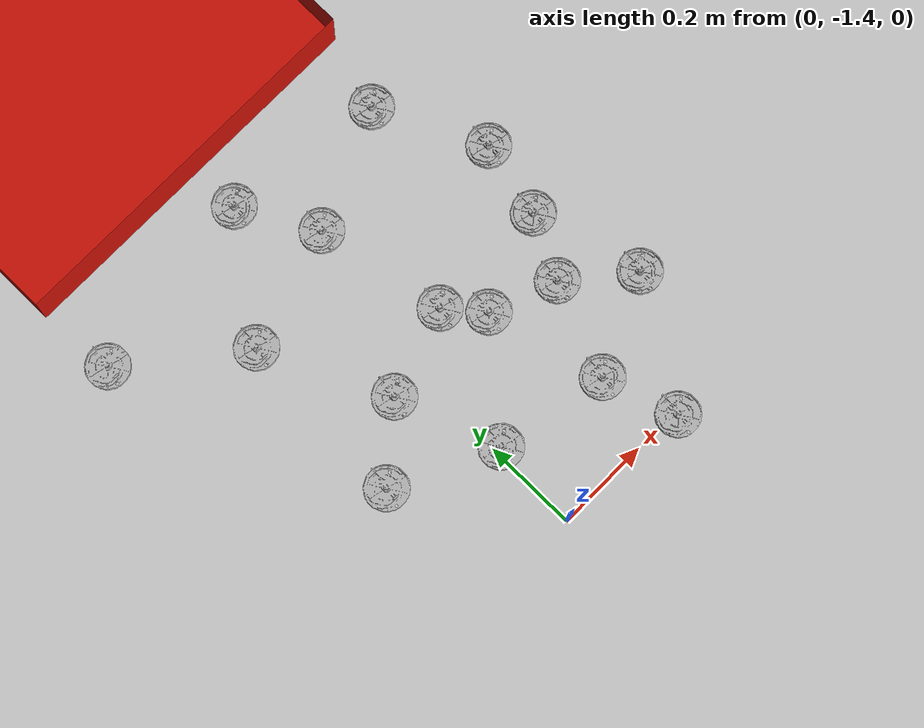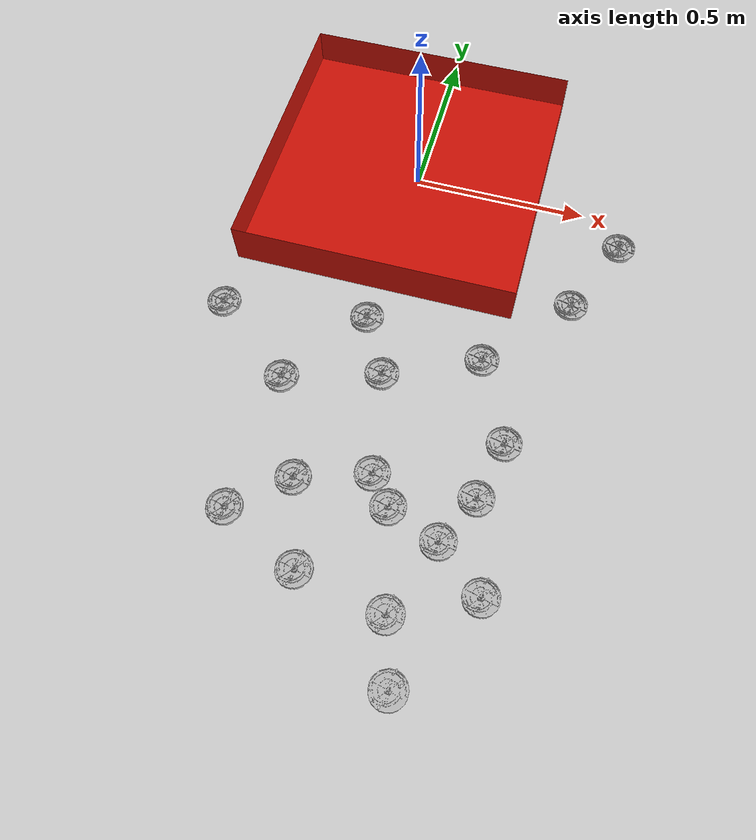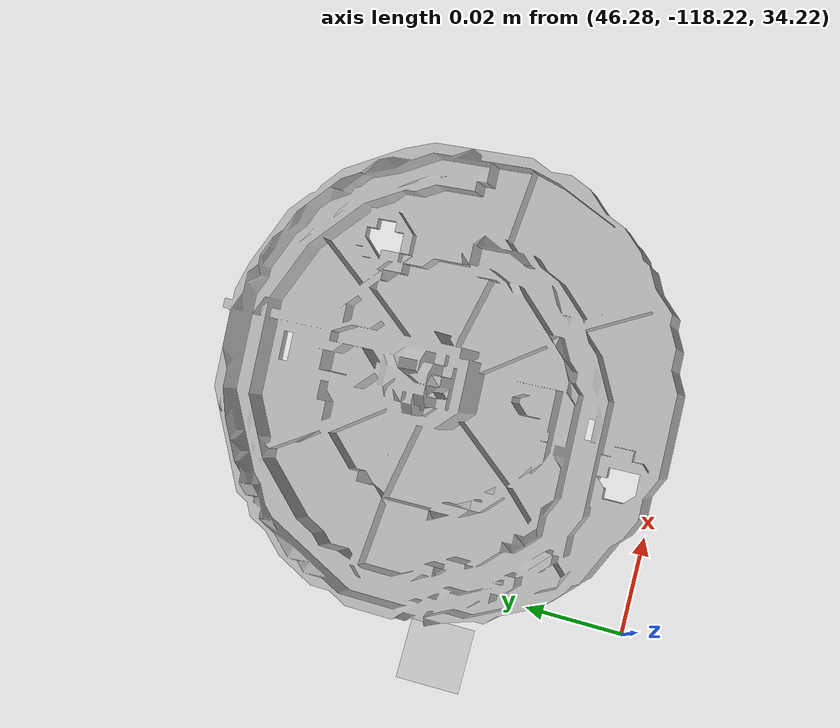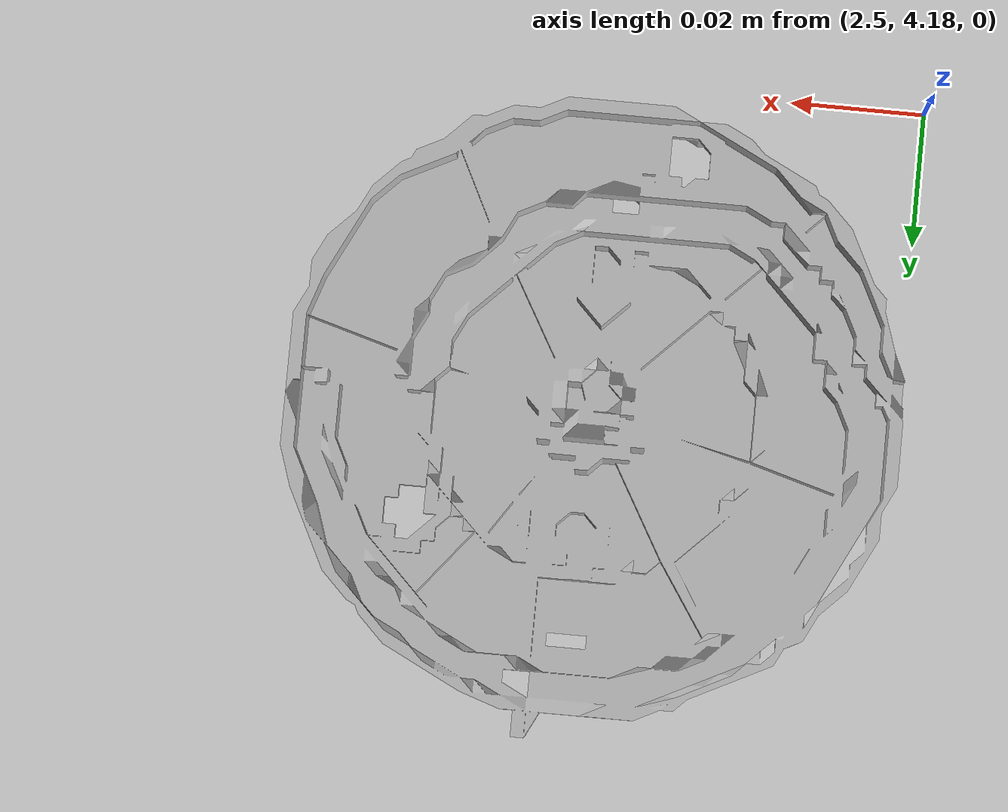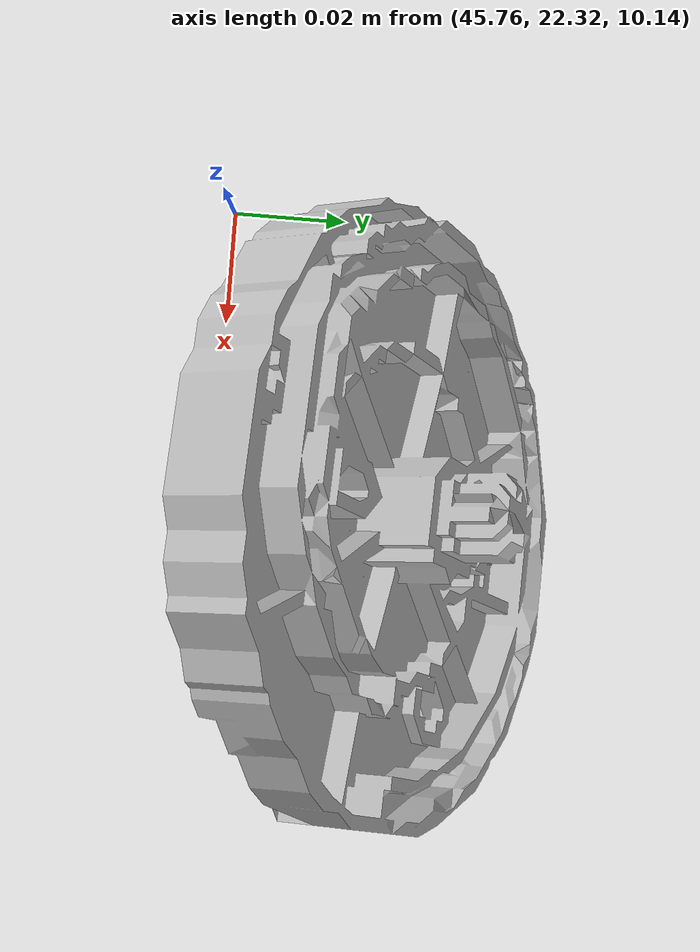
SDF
<sdf version="1.7">
 <world name="default">
  <light name="sun" type="directional">
   <pose>0 0 10 0 -0 0</pose>
   <diffuse>0.8 0.8 0.8 1</diffuse>
   <specular>0.2 0.2 0.2 1</specular>
   <attenuation>
    <range>1000</range>
    <constant>0.9</constant>
    <linear>0.01</linear>
    <quadratic>0.001</quadratic>
   </attenuation>
   <direction>-0.5 0.1 -0.9</direction>
   <spot><inner_angle>0</inner_angle><outer_angle>0</outer_angle><falloff>0</falloff></spot>
  </light>
  <model name="ground_plane">
   <static>1</static>
   <link name="link">
    <collision name="collision">
     <geometry><plane><normal>0 0 1</normal><size>100 100</size></plane></geometry>
     <surface>
      <contact><collide_bitmask>65535</collide_bitmask></contact>
      <friction><ode><mu>100</mu><mu2>50</mu2></ode></friction>
     </surface>
    </collision>
    <visual name="visual">
     <cast_shadows>0</cast_shadows>
     <geometry><plane><normal>0 0 1</normal><size>100 100</size></plane></geometry>
     <material>
      <script><uri>file://media/materials/scripts/gazebo.material</uri><name>Gazebo/Grey</name></script>
     </material>
    </visual>
   </link>
  </model>
  <gravity>0 0 -9.8</gravity>
  <magnetic_field>6e-06 2.3e-05 -4.2e-05</magnetic_field>
  <atmosphere type="adiabatic"/>
  <physics type="ode">
   <max_step_size>0.001</max_step_size>
   <real_time_factor>1</real_time_factor>
   <real_time_update_rate>1000</real_time_update_rate>
  </physics>
  <scene><ambient>0.4 0.4 0.4 1</ambient><background>0.7 0.7 0.7 1</background><shadows>1</shadows></scene>
  <spherical_coordinates>
   <surface_model>EARTH_WGS84</surface_model>
   <latitude_deg>0</latitude_deg>
   <longitude_deg>0</longitude_deg>
   <elevation>0</elevation>
   <heading_deg>0</heading_deg>
  </spherical_coordinates>
  <model name="HV8">
   <pose>2.54538 4.22938 4e-06 -0.000242 -5.7e-05 0.000126</pose>
   <static>0</static>
   <link name="HV8">
    <inertial>
     <mass>0.2</mass>
     <inertia><ixx>0.0005</ixx><ixy>0</ixy><ixz>0</ixz><iyy>0.0005</iyy><iyz>0</iyz><izz>0.0005</izz></inertia>
    </inertial>
    <collision name="collishin">
     <geometry><mesh><uri>model://HV8/meshes/HV8_1.stl</uri></mesh></geometry>
    </collision>
    <visual name="visual"><geometry><mesh><uri>model://HV8/meshes/HV8_1.stl</uri></mesh></geometry></visual>
   </link>
  </model>
  <model name="HV8_0">
   <pose>-0.413803 -0.554877 -2e-06 -0.000127 6.1e-05 0.000127</pose>
   <static>0</static>
   <link name="HV8">
    <inertial>
     <mass>0.2</mass>
     <inertia><ixx>0.0005</ixx><ixy>0</ixy><ixz>0</ixz><iyy>0.0005</iyy><iyz>0</iyz><izz>0.0005</izz></inertia>
    </inertial>
    <collision name="collishin">
     <geometry><mesh><uri>model://HV8/meshes/HV8_1.stl</uri></mesh></geometry>
    </collision>
    <visual name="visual"><geometry><mesh><uri>model://HV8/meshes/HV8_1.stl</uri></mesh></geometry></visual>
   </link>
  </model>
  <model name="HV8_1">
   <pose>0.07146 -0.657813 -3e-06 -4.9e-05 -6.2e-05 0.000118</pose>
   <static>0</static>
   <link name="HV8">
    <inertial>
     <mass>0.2</mass>
     <inertia><ixx>0.0005</ixx><ixy>0</ixy><ixz>0</ixz><iyy>0.0005</iyy><iyz>0</iyz><izz>0.0005</izz></inertia>
    </inertial>
    <collision name="collishin">
     <geometry><mesh><uri>model://HV8/meshes/HV8_1.stl</uri></mesh></geometry>
    </collision>
    <visual name="visual"><geometry><mesh><uri>model://HV8/meshes/HV8_1.stl</uri></mesh></geometry></visual>
   </link>
  </model>
  <model name="HV8_2">
   <pose>0.319126 -0.548999 -1e-06 -2.4e-05 1.8e-05 0.000114</pose>
   <static>0</static>
   <link name="HV8">
    <inertial>
     <mass>0.2</mass>
     <inertia><ixx>0.0005</ixx><ixy>0</ixy><ixz>0</ixz><iyy>0.0005</iyy><iyz>0</iyz><izz>0.0005</izz></inertia>
    </inertial>
    <collision name="collishin">
     <geometry><mesh><uri>model://HV8/meshes/HV8_1.stl</uri></mesh></geometry>
    </collision>
    <visual name="visual"><geometry><mesh><uri>model://HV8/meshes/HV8_1.stl</uri></mesh></geometry></visual>
   </link>
  </model>
  <model name="HV8_3">
   <pose>-0.015538 -0.500385 -3e-06 -1.8e-05 7.7e-05 0.000115</pose>
   <static>0</static>
   <link name="HV8">
    <inertial>
     <mass>0.2</mass>
     <inertia><ixx>0.0005</ixx><ixy>0</ixy><ixz>0</ixz><iyy>0.0005</iyy><iyz>0</iyz><izz>0.0005</izz></inertia>
    </inertial>
    <collision name="collishin">
     <geometry><mesh><uri>model://HV8/meshes/HV8_1.stl</uri></mesh></geometry>
    </collision>
    <visual name="visual"><geometry><mesh><uri>model://HV8/meshes/HV8_1.stl</uri></mesh></geometry></visual>
   </link>
  </model>
  <model name="HV8_4">
   <pose>0.519961 -0.317107 2e-06 -4.2e-05 -4.1e-05 0.000115</pose>
   <static>0</static>
   <link name="HV8">
    <inertial>
     <mass>0.2</mass>
     <inertia><ixx>0.0005</ixx><ixy>0</ixy><ixz>0</ixz><iyy>0.0005</iyy><iyz>0</iyz><izz>0.0005</izz></inertia>
    </inertial>
    <collision name="collishin">
     <geometry><mesh><uri>model://HV8/meshes/HV8_1.stl</uri></mesh></geometry>
    </collision>
    <visual name="visual"><geometry><mesh><uri>model://HV8/meshes/HV8_1.stl</uri></mesh></geometry></visual>
   </link>
  </model>
  <model name="HV8_5">
   <pose>-0.183854 -0.73354 5e-06 -6e-05 -9.1e-05 0.000115</pose>
   <static>0</static>
   <link name="HV8">
    <inertial>
     <mass>0.2</mass>
     <inertia><ixx>0.0005</ixx><ixy>0</ixy><ixz>0</ixz><iyy>0.0005</iyy><iyz>0</iyz><izz>0.0005</izz></inertia>
    </inertial>
    <collision name="collishin">
     <geometry><mesh><uri>model://HV8/meshes/HV8_1.stl</uri></mesh></geometry>
    </collision>
    <visual name="visual"><geometry><mesh><uri>model://HV8/meshes/HV8_1.stl</uri></mesh></geometry></visual>
   </link>
  </model>
  <model name="HV8_6">
   <pose>0.619999 -0.089835 -2e-06 8e-05 1.5e-05 0.00011</pose>
   <static>0</static>
   <link name="HV8">
    <inertial>
     <mass>0.2</mass>
     <inertia><ixx>0.0005</ixx><ixy>0</ixy><ixz>0</ixz><iyy>0.0005</iyy><iyz>0</iyz><izz>0.0005</izz></inertia>
    </inertial>
    <collision name="collishin">
     <geometry><mesh><uri>model://HV8/meshes/HV8_1.stl</uri></mesh></geometry>
    </collision>
    <visual name="visual"><geometry><mesh><uri>model://HV8/meshes/HV8_1.stl</uri></mesh></geometry></visual>
   </link>
  </model>
  <model name="HV8_7">
   <pose>46.3173 -118.174 34.2334 -0.271528 -0.232311 0.048552</pose>
   <static>0</static>
   <link name="HV8">
    <inertial>
     <mass>0.2</mass>
     <inertia><ixx>0.0005</ixx><ixy>0</ixy><ixz>0</ixz><iyy>0.0005</iyy><iyz>0</iyz><izz>0.0005</izz></inertia>
    </inertial>
    <collision name="collishin">
     <geometry><mesh><uri>model://HV8/meshes/HV8_1.stl</uri></mesh></geometry>
    </collision>
    <visual name="visual"><geometry><mesh><uri>model://HV8/meshes/HV8_1.stl</uri></mesh></geometry></visual>
   </link>
  </model>
  <model name="HV8_8">
   <pose>45.8143 22.3464 10.1881 -1.05683 -0.176741 -0.034171</pose>
   <static>0</static>
   <link name="HV8">
    <inertial>
     <mass>0.2</mass>
     <inertia><ixx>0.0005</ixx><ixy>0</ixy><ixz>0</ixz><iyy>0.0005</iyy><iyz>0</iyz><izz>0.0005</izz></inertia>
    </inertial>
    <collision name="collishin">
     <geometry><mesh><uri>model://HV8/meshes/HV8_1.stl</uri></mesh></geometry>
    </collision>
    <visual name="visual"><geometry><mesh><uri>model://HV8/meshes/HV8_1.stl</uri></mesh></geometry></visual>
   </link>
  </model>
  <model name="HV8_9">
   <pose>0.250308 -1.25312 5e-06 -6e-05 -9.1e-05 3.7e-05</pose>
   <static>0</static>
   <link name="HV8">
    <inertial>
     <mass>0.2</mass>
     <inertia><ixx>0.0005</ixx><ixy>0</ixy><ixz>0</ixz><iyy>0.0005</iyy><iyz>0</iyz><izz>0.0005</izz></inertia>
    </inertial>
    <collision name="collishin">
     <geometry><mesh><uri>model://HV8/meshes/HV8_1.stl</uri></mesh></geometry>
    </collision>
    <visual name="visual"><geometry><mesh><uri>model://HV8/meshes/HV8_1.stl</uri></mesh></geometry></visual>
   </link>
  </model>
  <model name="HV8_10">
   <pose>0.300802 -1.4083 -3e-06 -1.3e-05 -9.7e-05 3.6e-05</pose>
   <static>0</static>
   <link name="HV8">
    <inertial>
     <mass>0.2</mass>
     <inertia><ixx>0.0005</ixx><ixy>0</ixy><ixz>0</ixz><iyy>0.0005</iyy><iyz>0</iyz><izz>0.0005</izz></inertia>
    </inertial>
    <collision name="collishin">
     <geometry><mesh><uri>model://HV8/meshes/HV8_1.stl</uri></mesh></geometry>
    </collision>
    <visual name="visual"><geometry><mesh><uri>model://HV8/meshes/HV8_1.stl</uri></mesh></geometry></visual>
   </link>
  </model>
  <model name="HV8_11">
   <pose>0.45428 -1.1588 -2e-06 -0.000125 6e-05 3.5e-05</pose>
   <static>0</static>
   <link name="HV8">
    <inertial>
     <mass>0.2</mass>
     <inertia><ixx>0.0005</ixx><ixy>0</ixy><ixz>0</ixz><iyy>0.0005</iyy><iyz>0</iyz><izz>0.0005</izz></inertia>
    </inertial>
    <collision name="collishin">
     <geometry><mesh><uri>model://HV8/meshes/HV8_1.stl</uri></mesh></geometry>
    </collision>
    <visual name="visual"><geometry><mesh><uri>model://HV8/meshes/HV8_1.stl</uri></mesh></geometry></visual>
   </link>
  </model>
  <model name="HV8_12">
   <pose>0.013393 -1.20914 0 -1.9e-05 2.3e-05 3.5e-05</pose>
   <static>0</static>
   <link name="HV8">
    <inertial>
     <mass>0.2</mass>
     <inertia><ixx>0.0005</ixx><ixy>0</ixy><ixz>0</ixz><iyy>0.0005</iyy><iyz>0</iyz><izz>0.0005</izz></inertia>
    </inertial>
    <collision name="collishin">
     <geometry><mesh><uri>model://HV8/meshes/HV8_1.stl</uri></mesh></geometry>
    </collision>
    <visual name="visual"><geometry><mesh><uri>model://HV8/meshes/HV8_1.stl</uri></mesh></geometry></visual>
   </link>
  </model>
  <model name="HV8_13">
   <pose>-0.062683 -0.993077 0 9e-06 -6e-06 3.4e-05</pose>
   <static>0</static>
   <link name="HV8">
    <inertial>
     <mass>0.2</mass>
     <inertia><ixx>0.0005</ixx><ixy>0</ixy><ixz>0</ixz><iyy>0.0005</iyy><iyz>0</iyz><izz>0.0005</izz></inertia>
    </inertial>
    <collision name="collishin">
     <geometry><mesh><uri>model://HV8/meshes/HV8_1.stl</uri></mesh></geometry>
    </collision>
    <visual name="visual"><geometry><mesh><uri>model://HV8/meshes/HV8_1.stl</uri></mesh></geometry></visual>
   </link>
  </model>
  <model name="HV8_14">
   <pose>0.124997 -0.932241 0 -2.6e-05 -8e-06 3.3e-05</pose>
   <static>0</static>
   <link name="HV8">
    <inertial>
     <mass>0.2</mass>
     <inertia><ixx>0.0005</ixx><ixy>0</ixy><ixz>0</ixz><iyy>0.0005</iyy><iyz>0</iyz><izz>0.0005</izz></inertia>
    </inertial>
    <collision name="collishin">
     <geometry><mesh><uri>model://HV8/meshes/HV8_1.stl</uri></mesh></geometry>
    </collision>
    <visual name="visual"><geometry><mesh><uri>model://HV8/meshes/HV8_1.stl</uri></mesh></geometry></visual>
   </link>
  </model>
  <model name="HV8_15">
   <pose>0.18672 -1.00561 -2e-06 8e-05 1.5e-05 3.3e-05</pose>
   <static>0</static>
   <link name="HV8">
    <inertial>
     <mass>0.2</mass>
     <inertia><ixx>0.0005</ixx><ixy>0</ixy><ixz>0</ixz><iyy>0.0005</iyy><iyz>0</iyz><izz>0.0005</izz></inertia>
    </inertial>
    <collision name="collishin">
     <geometry><mesh><uri>model://HV8/meshes/HV8_1.stl</uri></mesh></geometry>
    </collision>
    <visual name="visual"><geometry><mesh><uri>model://HV8/meshes/HV8_1.stl</uri></mesh></geometry></visual>
   </link>
  </model>
  <model name="HV8_16">
   <pose>0.390449 -0.92825 5e-06 -6e-05 -9.1e-05 3.3e-05</pose>
   <static>0</static>
   <link name="HV8">
    <inertial>
     <mass>0.2</mass>
     <inertia><ixx>0.0005</ixx><ixy>0</ixy><ixz>0</ixz><iyy>0.0005</iyy><iyz>0</iyz><izz>0.0005</izz></inertia>
    </inertial>
    <collision name="collishin">
     <geometry><mesh><uri>model://HV8/meshes/HV8_1.stl</uri></mesh></geometry>
    </collision>
    <visual name="visual"><geometry><mesh><uri>model://HV8/meshes/HV8_1.stl</uri></mesh></geometry></visual>
   </link>
  </model>
  <model name="HV8_17">
   <pose>0.326324 -1.05685 0 3e-06 9e-06 3.1e-05</pose>
   <static>0</static>
   <link name="HV8">
    <inertial>
     <mass>0.2</mass>
     <inertia><ixx>0.0005</ixx><ixy>0</ixy><ixz>0</ixz><iyy>0.0005</iyy><iyz>0</iyz><izz>0.0005</izz></inertia>
    </inertial>
    <collision name="collishin">
     <geometry><mesh><uri>model://HV8/meshes/HV8_1.stl</uri></mesh></geometry>
    </collision>
    <visual name="visual"><geometry><mesh><uri>model://HV8/meshes/HV8_1.stl</uri></mesh></geometry></visual>
   </link>
  </model>
  <model name="HV8_18">
   <pose>-0.200407 -1.1087 8e-06 -0.000167 -9e-05 3.3e-05</pose>
   <static>0</static>
   <link name="HV8">
    <inertial>
     <mass>0.2</mass>
     <inertia><ixx>0.0005</ixx><ixy>0</ixy><ixz>0</ixz><iyy>0.0005</iyy><iyz>0</iyz><izz>0.0005</izz></inertia>
    </inertial>
    <collision name="collishin">
     <geometry><mesh><uri>model://HV8/meshes/HV8_1.stl</uri></mesh></geometry>
    </collision>
    <visual name="visual"><geometry><mesh><uri>model://HV8/meshes/HV8_1.stl</uri></mesh></geometry></visual>
   </link>
  </model>
  <model name="HV8_19">
   <pose>0.426549 -0.769714 -2e-06 -1.1e-05 -6e-05 2.8e-05</pose>
   <static>0</static>
   <link name="HV8">
    <inertial>
     <mass>0.2</mass>
     <inertia><ixx>0.0005</ixx><ixy>0</ixy><ixz>0</ixz><iyy>0.0005</iyy><iyz>0</iyz><izz>0.0005</izz></inertia>
    </inertial>
    <collision name="collishin">
     <geometry><mesh><uri>model://HV8/meshes/HV8_1.stl</uri></mesh></geometry>
    </collision>
    <visual name="visual"><geometry><mesh><uri>model://HV8/meshes/HV8_1.stl</uri></mesh></geometry></visual>
   </link>
  </model>
  <model name="object_box_0">
   <pose>-0.03209 0.00202 0 0 -0 0</pose>
   <static>1</static>
   <link name="object_box">
    <inertial>
     <mass>0.2</mass>
     <inertia><ixx>0.0005</ixx><ixy>0</ixy><ixz>0</ixz><iyy>0.0005</iyy><iyz>0</iyz><izz>0.0005</izz></inertia>
    </inertial>
    <collision name="collision">
     <geometry><mesh><uri>model://object_box/meshed/object_box_2.dae</uri></mesh></geometry>
    </collision>
    <visual name="visual">
     <geometry><mesh><uri>model://object_box/meshed/object_box_2.dae</uri></mesh></geometry>
    </visual>
   </link>
  </model>
 </world>
</sdf>
